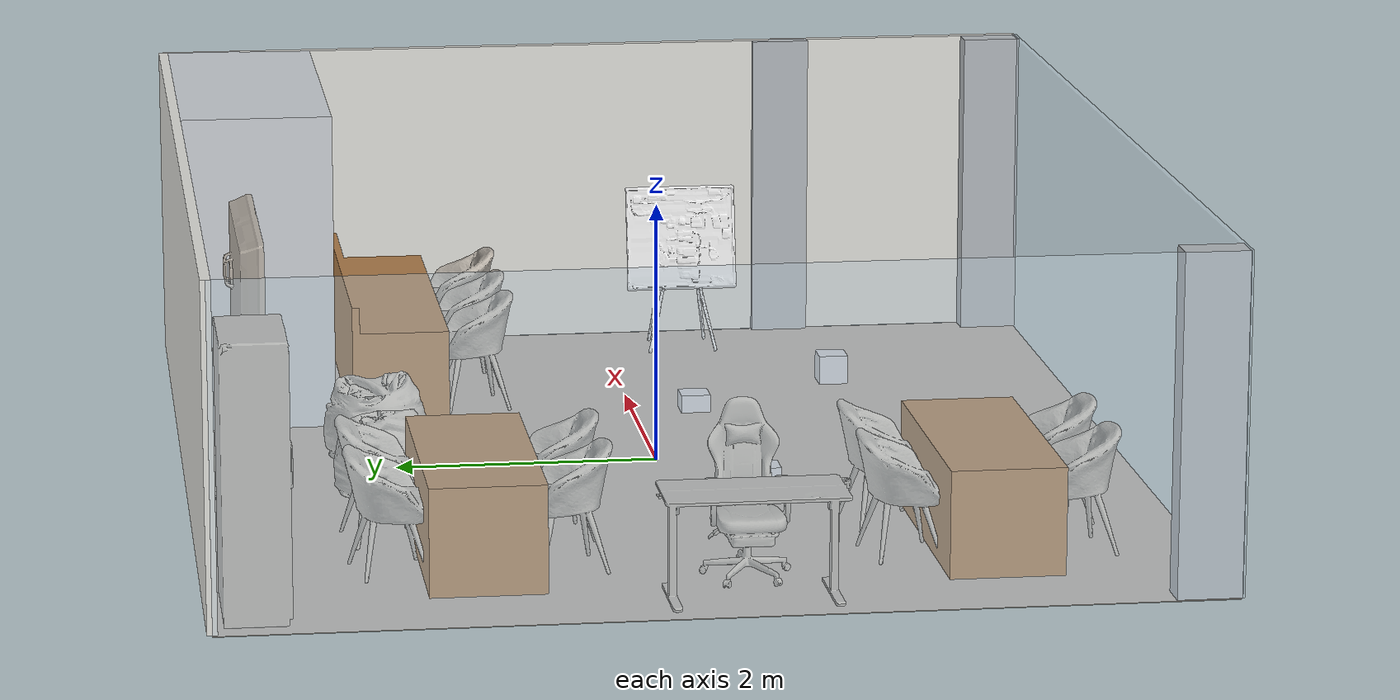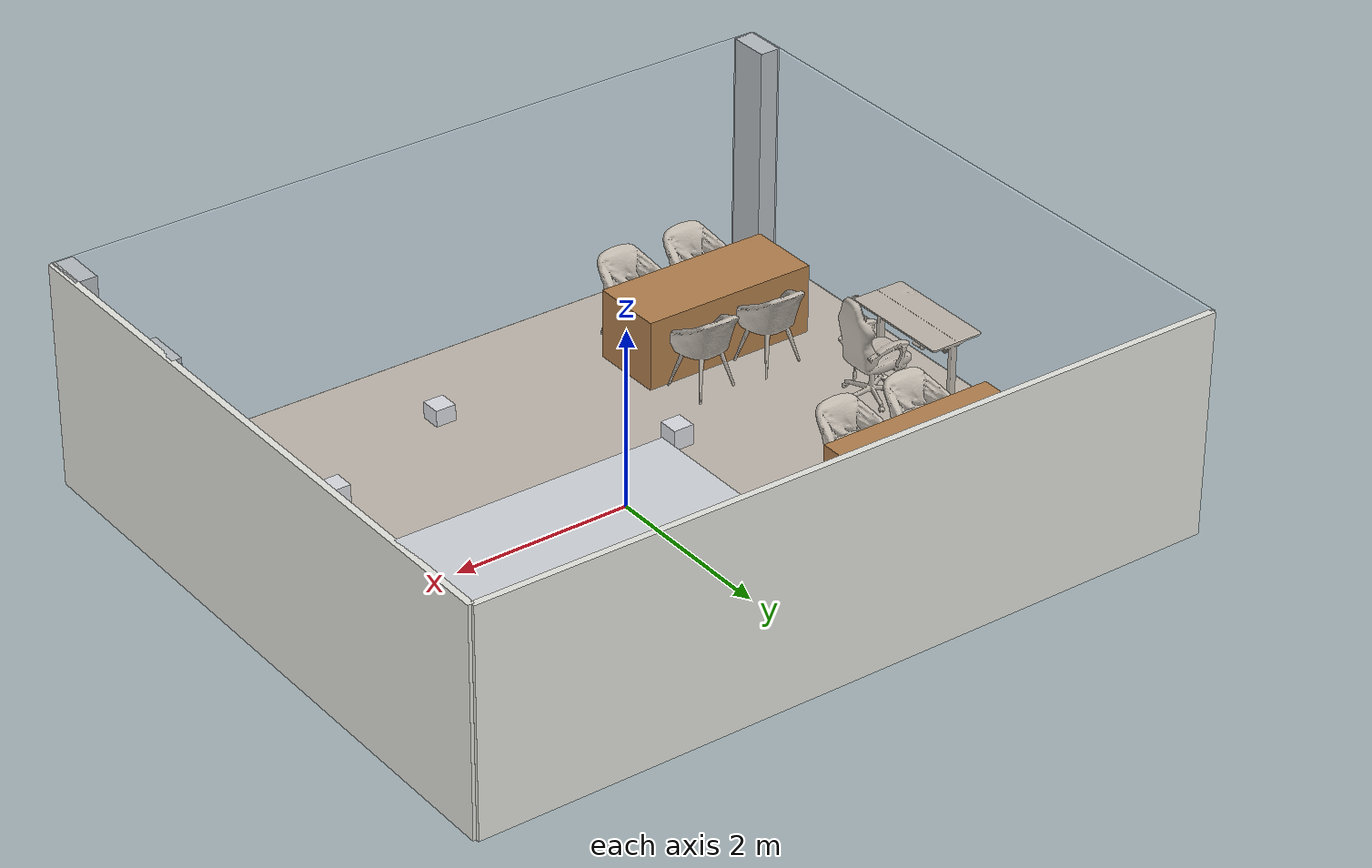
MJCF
<?xml version='1.0' encoding='utf-8'?>
<mujoco model="pair_lab">
  <compiler angle="radian" coordinate="local" />
  <option timestep="0.002" integrator="implicitfast" />
  <visual>
    <headlight ambient="0.45 0.45 0.45" diffuse="0.5 0.5 0.5" specular="0.2 0.2 0.2" />
    <rgba haze="0.15 0.25 0.35 1" />
    <global azimuth="130" elevation="-30" offwidth="1920" offheight="1080" />
    <quality shadowsize="4096" />
  </visual>
  <asset>
    <texture name="chair_tex" type="2d" file="assets/chair_diffuse.png" />
    <material name="chair_mat" texture="chair_tex" specular="0.12" roughness="0.85" />
    <texture name="table_wood_tex" type="2d" file="assets/table_diffuse.png" />
    <material name="table_wood_mat" texture="table_wood_tex" specular="0.22" roughness="0.55" texrepeat="2 2" />
    <texture name="table_adj_tex" type="2d" file="assets/table_adjustable_diffuse.png" />
    <material name="table_adj_mat" texture="table_adj_tex" specular="0.3" roughness="0.6" />
    <texture name="almirah_tex" type="2d" file="assets/almirah_diffuse.png" />
    <material name="almirah_mat" texture="almirah_tex" specular="0.2" roughness="0.7" />
    <texture name="beanbag_tex" type="2d" file="assets/beanbag_diffuse.png" />
    <material name="beanbag_mat" texture="beanbag_tex" specular="0.1" roughness="0.9" />
    <texture name="screen_tex" type="2d" file="assets/screen_diffuse.png" />
    <material name="screen_mat" texture="screen_tex" specular="0.4" roughness="0.3" />
    <texture name="whiteboard_tex" type="2d" file="assets/whiteboard_diffuse.png" />
    <material name="whiteboard_mat" texture="whiteboard_tex" specular="0.5" roughness="0.4" />
    <texture name="gaming_chair_tex" type="2d" file="assets/gaming_chair_diffuse.png" />
    <material name="gaming_chair_mat" texture="gaming_chair_tex" specular="0.25" roughness="0.65" />
    <texture name="floor_tex" type="2d" file="assets/floor_diffuse.png" />
    <material name="floor_mat" texture="floor_tex" texrepeat="18 15" reflectance="0.04" roughness="0.92" />
    <material name="wall_mat" rgba="0.90 0.90 0.88 1" specular="0.1" roughness="0.9" />
    <material name="glass_mat" rgba="0.82 0.90 0.96 0.35" specular="0.9" roughness="0.1" />
    <material name="partition_mat" rgba="0.82 0.84 0.86 1" specular="0.1" roughness="0.85" />
    <material name="pillar_mat" rgba="0.72 0.74 0.76 1" specular="0.2" roughness="0.7" />
    <material name="cube_mat" rgba="0.86 0.87 0.89 1" specular="0.25" roughness="0.7" />
    <mesh name="chair_mesh" file="assets/chair.obj" scale="0.9302 0.9302 0.9302" />
    <mesh name="table_small_mesh" file="assets/table_small.obj" scale="1.0140 0.4186 0.3953" />
    <mesh name="table_big_mesh" file="assets/table_big.obj" scale="0.4419 0.4767 0.4651" />
    <mesh name="table_adjustable_mesh" file="assets/table_adjustable.obj" scale="1.4186 1.4186 1.4186" />
    <mesh name="gaming_chair_mesh" file="assets/gaming_chair.obj" scale="1.2791 1.2791 1.2791" />
    <mesh name="almirah_mesh" file="assets/almirah.obj" scale="2.0465 2.0465 2.0465" />
    <mesh name="beanbag_mesh" file="assets/beanbag.obj" scale="0.8140 0.8140 0.8140" />
    <mesh name="screen_mesh" file="assets/screen.obj" scale="2.0930 2.0930 2.0930" />
    <mesh name="whiteboard_mesh" file="assets/whiteboard.obj" scale="1.3953 1.3953 1.3953" />
  </asset>
  <worldbody>
    <light name="sun_key" pos="0 0 8" dir="0.2 0.3 -1" directional="true" diffuse="0.7 0.7 0.65" specular="0.3 0.3 0.3" castshadow="true" />
    <light name="fill_left" pos="-5 0 4.5" dir="0.5 0 -1" directional="false" diffuse="0.45 0.45 0.5" castshadow="false" />
    <light name="fill_right" pos="5 0 4.5" dir="-0.5 0 -1" directional="false" diffuse="0.45 0.45 0.5" castshadow="false" />
    <geom name="floor" type="plane" size="4.2093 3.5860 0.0465" material="floor_mat" />
    <geom name="wall_north" type="box" pos="0.0000 3.5860 1.2419" size="4.2093 0.0372 1.2419" material="wall_mat" />
    <geom name="wall_east" type="box" pos="4.2093 0.0000 1.2419" size="0.0372 3.5860 1.2419" material="wall_mat" />
    <geom name="glass_wall_south" type="box" pos="0.0000 -3.5860 1.2419" size="4.2093 0.0186 1.2419" material="glass_mat" />
    <geom name="glass_wall_west" type="box" pos="-4.2093 0.0000 1.2419" size="0.0186 3.5860 1.2419" material="glass_mat" />
    <geom name="side_room" type="box" pos="2.7674 2.9814 1.2419" size="1.4419 0.6047 1.2419" material="partition_mat" />
    <geom name="pillar_big" type="box" pos="-4.0930 -3.3535 1.2419" size="0.1163 0.2326 1.2419" material="pillar_mat" />
    <geom name="pillar_mid" type="box" pos="4.0930 -3.3535 1.2419" size="0.1163 0.2326 1.2419" material="pillar_mat" />
    <geom name="pillar_short_1" type="box" pos="4.1581 -1.5743 1.2419" size="0.0512 0.2326 1.2419" material="pillar_mat" />
    <body name="table_big" pos="2.6744 1.8605 0.0000" euler="0 0 0">
      <geom name="table_big_geom" type="mesh" mesh="table_big_mesh" material="table_wood_mat" />
    </body>
    <body name="table_small_1" pos="-2.4911 1.6257 0.0000" euler="0 0 0">
      <geom name="table_small_1_geom" type="mesh" mesh="table_small_mesh" material="table_wood_mat" />
    </body>
    <body name="table_small_2" pos="-2.4911 -2.0618 0.0000" euler="0 0 0">
      <geom name="table_small_2_geom" type="mesh" mesh="table_small_mesh" material="table_wood_mat" />
    </body>
    <body name="table_adjustable" pos="-3.7711 -0.2307 0.0000" euler="0 0 1.570796">
      <geom name="table_adj_geom" type="mesh" mesh="table_adjustable_mesh" material="table_adj_mat" />
    </body>
    <body name="gaming_chair" pos="-3.2215 -0.2326 0.0000" euler="0 0 -1.570796">
      <geom name="gaming_chair_geom" type="mesh" mesh="gaming_chair_mesh" material="gaming_chair_mat" />
    </body>
    <body name="almirah" pos="-3.6216 3.2455 0.0000" euler="0 0 0">
      <geom name="almirah_geom" type="mesh" mesh="almirah_mesh" material="almirah_mat" />
    </body>
    <body name="screen" pos="-0.3602 3.1476 0.0000" euler="0 0 0">
      <geom name="screen_geom" type="mesh" mesh="screen_mesh" material="screen_mat" />
    </body>
    <body name="beanbag_1" pos="-0.6648 2.1286 0.0000" euler="0 0 -1.941900">
      <geom name="beanbag_1_geom" type="mesh" mesh="beanbag_mesh" material="beanbag_mat" />
    </body>
    <body name="beanbag_2" pos="0.4312 2.1286 0.0000" euler="0 0 0">
      <geom name="beanbag_2_geom" type="mesh" mesh="beanbag_mesh" material="beanbag_mat" />
    </body>
    <body name="whiteboard_1" pos="3.6192 -0.6568 0.0000" euler="0 0 -1.570796">
      <geom name="whiteboard_1_geom" type="mesh" mesh="whiteboard_mesh" material="whiteboard_mat" />
    </body>
    <body name="cube_1" pos="-1.0983 -0.6714 0.1163">
      <geom name="cube_1_geom" type="box" size="0.1163 0.1163 0.1163" material="cube_mat" />
    </body>
    <body name="cube_2" pos="0.2491 0.6736 0.0814">
      <geom name="cube_2_geom" type="box" size="0.1163 0.1163 0.0814" material="cube_mat" />
    </body>
    <body name="cube_3" pos="1.5051 -0.4948 0.0698">
      <geom name="cube_3_geom" type="box" size="0.1163 0.1163 0.0698" material="cube_mat" />
    </body>
    <body name="cube_4" pos="0.5725 -2.4406 0.0930">
      <geom name="cube_4_geom" type="box" size="0.1163 0.1163 0.0930" material="cube_mat" />
    </body>
    <body name="cube_5" pos="2.2820 -1.7302 0.1163">
      <geom name="cube_5_geom" type="box" size="0.1163 0.1163 0.1163" material="cube_mat" />
    </body>
    <body name="chair_1" pos="-1.9770 1.0113 0.0000" euler="0 0 3.141593">
      <geom name="chair_1_geom" type="mesh" mesh="chair_mesh" material="chair_mat" />
    </body>
    <body name="chair_2" pos="-2.8203 1.0113 0.0000" euler="0 0 3.141593">
      <geom name="chair_2_geom" type="mesh" mesh="chair_mesh" material="chair_mat" />
    </body>
    <body name="chair_3" pos="-1.9770 2.2633 0.0000" euler="0 0 0">
      <geom name="chair_3_geom" type="mesh" mesh="chair_mesh" material="chair_mat" />
    </body>
    <body name="chair_4" pos="-2.8203 2.2633 0.0000" euler="0 0 0">
      <geom name="chair_4_geom" type="mesh" mesh="chair_mesh" material="chair_mat" />
    </body>
    <body name="chair_5" pos="-1.9770 -1.4138 0.0000" euler="0 0 0">
      <geom name="chair_5_geom" type="mesh" mesh="chair_mesh" material="chair_mat" />
    </body>
    <body name="chair_6" pos="-2.8203 -1.4138 0.0000" euler="0 0 0">
      <geom name="chair_6_geom" type="mesh" mesh="chair_mesh" material="chair_mat" />
    </body>
    <body name="chair_7" pos="-1.9770 -2.6658 0.0000" euler="0 0 3.141593">
      <geom name="chair_7_geom" type="mesh" mesh="chair_mesh" material="chair_mat" />
    </body>
    <body name="chair_8" pos="-2.8203 -2.6658 0.0000" euler="0 0 3.141593">
      <geom name="chair_8_geom" type="mesh" mesh="chair_mesh" material="chair_mat" />
    </body>
    <body name="chair_9" pos="1.8929 1.2482 0.0000" euler="0 0 3.141593">
      <geom name="chair_9_geom" type="mesh" mesh="chair_mesh" material="chair_mat" />
    </body>
    <body name="chair_10" pos="2.6283 1.2482 0.0000" euler="0 0 3.141593">
      <geom name="chair_10_geom" type="mesh" mesh="chair_mesh" material="chair_mat" />
    </body>
    <body name="chair_11" pos="3.4716 1.2482 0.0000" euler="0 0 3.141593">
      <geom name="chair_11_geom" type="mesh" mesh="chair_mesh" material="chair_mat" />
    </body>
    <camera name="lab_overview" pos="0.0000 -3.2558 2.4186" euler="0.959931 0 0" />
    <camera name="workspace_north" pos="-2.4419 -0.2326 1.6279" euler="0.872665 0 0" />
    <camera name="workspace_south" pos="-2.4419 -3.7209 1.6279" euler="0.872665 0 0" />
    <camera name="conference_area" pos="2.7674 -0.2326 1.4884" euler="0.872665 0 0" />
    <camera name="presentation_area" mode="targetbody" target="screen" pos="-0.2326 0.6977 1.0233" />
    <camera name="almirah_view" mode="targetbody" target="almirah" pos="-2.2326 2.4186 1.0233" />
    <camera name="whiteboard_view" mode="targetbody" target="whiteboard_1" pos="2.4186 -0.6568 0.8372" />
    <camera name="adjustable_desk_view" mode="targetbody" target="table_adjustable" pos="-2.0930 -0.2326 1.0233" />
    <camera name="cubes_view" pos="0.4651 -3.2558 1.9535" euler="0.872665 0 0" />
  </worldbody>
</mujoco>
